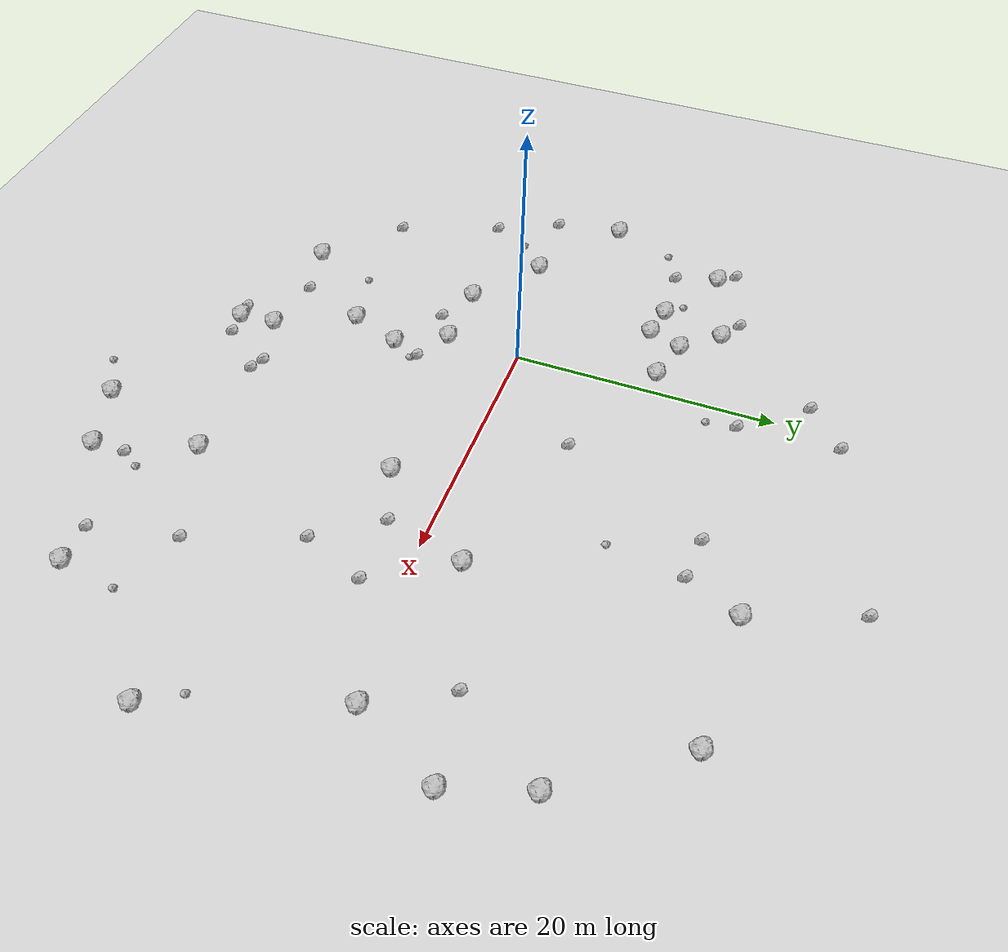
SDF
<sdf version="1.6">
 <world name="default">
  <include><uri>model://custom_ground</uri></include>
  <include><uri>model://sun</uri></include>
  <model name="rock1_0_0">
   <include><uri>model://rock1</uri><pose>14.795688683390786 -27.14831153094539 0.5 0 0 0</pose></include>
  </model>
  <model name="rock1_0_1">
   <include><uri>model://rock1</uri><pose>-1.706923984978932 10.54316519346279 0.5 0 0 0</pose></include>
  </model>
  <model name="rock1_0_2">
   <include><uri>model://rock1</uri><pose>36.20986750086257 7.562524197066146 0.5 0 0 0</pose></include>
  </model>
  <model name="rock1_0_3">
   <include><uri>model://rock1</uri><pose>-10.713392223705311 -1.8791601486154157 0.5 0 0 0</pose></include>
  </model>
  <model name="rock1_0_4">
   <include><uri>model://rock1</uri><pose>29.83726147053168 -21.61384395769337 0.5 0 0 0</pose></include>
  </model>
  <model name="rock1_0_5">
   <include><uri>model://rock1</uri><pose>19.894158736887007 -25.55735908063849 0.5 0 0 0</pose></include>
  </model>
  <model name="rock1_0_6">
   <include><uri>model://rock1</uri><pose>-6.229414679989398 8.862673283574942 0.5 0 0 0</pose></include>
  </model>
  <model name="rock1_0_7">
   <include><uri>model://rock1</uri><pose>28.392063431559578 21.204259694937107 0.5 0 0 0</pose></include>
  </model>
  <model name="rock1_0_8">
   <include><uri>model://rock1</uri><pose>-17.799776795680394 2.9973066329254223 0.5 0 0 0</pose></include>
  </model>
  <model name="rock1_0_9">
   <include><uri>model://rock1</uri><pose>-5.908799949721605 -19.581848003338365 0.5 0 0 0</pose></include>
  </model>
  <model name="rock1_0_10">
   <include><uri>model://rock1</uri><pose>0.5131681898043041 -13.494313717414727 0.5 0 0 0</pose></include>
  </model>
  <model name="rock1_0_11">
   <include><uri>model://rock1</uri><pose>-7.65340110197357 14.214385039071452 0.5 0 0 0</pose></include>
  </model>
  <model name="rock1_0_12">
   <include><uri>model://rock1</uri><pose>3.4089803754233827 -19.387710017260467 0.5 0 0 0</pose></include>
  </model>
  <model name="rock1_0_13">
   <include><uri>model://rock1</uri><pose>17.46791862944231 -18.244187734937878 0.5 0 0 0</pose></include>
  </model>
  <model name="rock1_0_14">
   <include><uri>model://rock1</uri><pose>32.79111083680419 1.2136669253837447 0.5 0 0 0</pose></include>
  </model>
  <model name="rock1_0_15">
   <include><uri>model://rock1</uri><pose>3.6267212202863632 -22.204231125626556 0.5 0 0 0</pose></include>
  </model>
  <model name="rock1_0_16">
   <include><uri>model://rock1</uri><pose>-5.364685814052528 -5.796391277258994 0.5 0 0 0</pose></include>
  </model>
  <model name="rock1_0_17">
   <include><uri>model://rock1</uri><pose>37.54391801237864 -11.596988959542134 0.5 0 0 0</pose></include>
  </model>
  <model name="rock1_0_18">
   <include><uri>model://rock1</uri><pose>-0.02281137222828633 -5.832264107584418 0.5 0 0 0</pose></include>
  </model>
  <model name="rock1_0_19">
   <include><uri>model://rock1</uri><pose>-5.224102922806127 11.451152772141818 0.5 0 0 0</pose></include>
  </model>
  <model name="rock1_0_20">
   <include><uri>model://rock1</uri><pose>-14.392712700027307 12.375875733089572 0.5 0 0 0</pose></include>
  </model>
  <model name="rock1_0_21">
   <include><uri>model://rock1</uri><pose>34.259506624269854 13.259453446502015 0.5 0 0 0</pose></include>
  </model>
  <model name="rock1_0_22">
   <include><uri>model://rock1</uri><pose>-8.866061724749766 9.345519450801802 0.5 0 0 0</pose></include>
  </model>
  <model name="rock1_0_23">
   <include><uri>model://rock1</uri><pose>20.518652755957582 3.233255584255005 0.5 0 0 0</pose></include>
  </model>
  <model name="rock1_0_24">
   <include><uri>model://rock1</uri><pose>18.207017896352333 21.315539076022574 0.5 0 0 0</pose></include>
  </model>
  <model name="rock1_0_25">
   <include><uri>model://rock1</uri><pose>2.038212884898172 -9.548987793975243 0.5 0 0 0</pose></include>
  </model>
  <model name="rock1_0_26">
   <include><uri>model://rock1</uri><pose>14.576690317029971 -4.447202481016223 0.5 0 0 0</pose></include>
  </model>
  <model name="rock2_0_0">
   <include><uri>model://rock2</uri><pose>-15.495539327728654 13.72186803700773 0.3 0 0 0</pose></include>
  </model>
  <model name="rock2_0_1">
   <include><uri>model://rock2</uri><pose>-17.07786166035204 -2.177265013467583 0.3 0 0 0</pose></include>
  </model>
  <model name="rock2_0_2">
   <include><uri>model://rock2</uri><pose>-14.713261614766246 -6.905199923018525 0.3 0 0 0</pose></include>
  </model>
  <model name="rock2_0_3">
   <include><uri>model://rock2</uri><pose>29.59546967933717 6.622737036477034 0.3 0 0 0</pose></include>
  </model>
  <model name="rock2_0_4">
   <include><uri>model://rock2</uri><pose>26.65429321618496 -21.744105184793405 0.3 0 0 0</pose></include>
  </model>
  <model name="rock2_0_5">
   <include><uri>model://rock2</uri><pose>7.4866258079092844 -18.212374485888645 0.3 0 0 0</pose></include>
  </model>
  <model name="rock2_0_6">
   <include><uri>model://rock2</uri><pose>8.604302659276083 -18.691747580249093 0.3 0 0 0</pose></include>
  </model>
  <model name="rock2_0_7">
   <include><uri>model://rock2</uri><pose>-9.563496964097551 15.309334300634305 0.3 0 0 0</pose></include>
  </model>
  <model name="rock2_0_8">
   <include><uri>model://rock2</uri><pose>15.145062004081588 29.061500034053708 0.3 0 0 0</pose></include>
  </model>
  <model name="rock2_0_9">
   <include><uri>model://rock2</uri><pose>18.801502723570543 -2.8233461534695117 0.3 0 0 0</pose></include>
  </model>
  <model name="rock2_0_10">
   <include><uri>model://rock2</uri><pose>1.5478529824665728 17.487551332967023 0.3 0 0 0</pose></include>
  </model>
  <model name="rock2_0_11">
   <include><uri>model://rock2</uri><pose>22.111100406113216 -7.2857802767124795 0.3 0 0 0</pose></include>
  </model>
  <model name="rock2_0_12">
   <include><uri>model://rock2</uri><pose>2.775841824752355 -7.326171847166343 0.3 0 0 0</pose></include>
  </model>
  <model name="rock2_0_13">
   <include><uri>model://rock2</uri><pose>-11.804403164181142 -14.675511997451284 0.3 0 0 0</pose></include>
  </model>
  <model name="rock2_0_14">
   <include><uri>model://rock2</uri><pose>19.715574235479714 -23.027488576152663 0.3 0 0 0</pose></include>
  </model>
  <model name="rock2_0_15">
   <include><uri>model://rock2</uri><pose>1.0558459031988612 24.99869160586244 0.3 0 0 0</pose></include>
  </model>
  <model name="rock2_0_16">
   <include><uri>model://rock2</uri><pose>-1.6252476968933003 -18.635608495968803 0.3 0 0 0</pose></include>
  </model>
  <model name="rock2_0_17">
   <include><uri>model://rock2</uri><pose>7.682084450049903 6.546321689420687 0.3 0 0 0</pose></include>
  </model>
  <model name="rock2_0_18">
   <include><uri>model://rock2</uri><pose>-2.2730771636869065 22.206646742545587 0.3 0 0 0</pose></include>
  </model>
  <model name="rock2_0_19">
   <include><uri>model://rock2</uri><pose>16.299728585252865 17.32045418123102 0.3 0 0 0</pose></include>
  </model>
  <model name="rock2_0_20">
   <include><uri>model://rock2</uri><pose>-13.552973471628631 9.087609601746152 0.3 0 0 0</pose></include>
  </model>
  <model name="rock2_0_21">
   <include><uri>model://rock2</uri><pose>24.041274496314948 -2.580237962663869 0.3 0 0 0</pose></include>
  </model>
  <model name="rock2_0_22">
   <include><uri>model://rock2</uri><pose>25.176981679820102 -15.330700207320437 0.3 0 0 0</pose></include>
  </model>
  <model name="rock2_0_23">
   <include><uri>model://rock2</uri><pose>-2.2752091433756263 -7.214180567994436 0.3 0 0 0</pose></include>
  </model>
  <model name="rock2_0_24">
   <include><uri>model://rock2</uri><pose>2.2608710360577007 -22.33759468981564 0.3 0 0 0</pose></include>
  </model>
  <model name="rock2_0_25">
   <include><uri>model://rock2</uri><pose>12.863975242542452 17.60222061896294 0.3 0 0 0</pose></include>
  </model>
  <model name="rock2_0_26">
   <include><uri>model://rock2</uri><pose>5.405452038079389 -22.029889060629323 0.3 0 0 0</pose></include>
  </model>
  <model name="rock3_0_0">
   <include><uri>model://rock3</uri><pose>3.0929600748753607 -7.819294703740191 0.2 0 0 0</pose></include>
  </model>
  <model name="rock3_0_1">
   <include><uri>model://rock3</uri><pose>35.72202980289187 -8.90646304234933 0.2 0 0 0</pose></include>
  </model>
  <model name="rock3_0_2">
   <include><uri>model://rock3</uri><pose>30.459421266073115 -17.299967465898607 0.2 0 0 0</pose></include>
  </model>
  <model name="rock3_0_3">
   <include><uri>model://rock3</uri><pose>-10.21954911992826 10.571860247155449 0.2 0 0 0</pose></include>
  </model>
  <model name="rock3_0_4">
   <include><uri>model://rock3</uri><pose>-16.1975670104704 7.797067646857933 0.2 0 0 0</pose></include>
  </model>
  <model name="rock3_0_5">
   <include><uri>model://rock3</uri><pose>15.470084045548099 11.642554874691001 0.2 0 0 0</pose></include>
  </model>
  <model name="rock3_0_6">
   <include><uri>model://rock3</uri><pose>-13.32084018999115 -4.050760291532786 0.2 0 0 0</pose></include>
  </model>
  <model name="rock3_0_7">
   <include><uri>model://rock3</uri><pose>20.62061421803992 -21.6032215973704 0.2 0 0 0</pose></include>
  </model>
  <model name="rock3_0_8">
   <include><uri>model://rock3</uri><pose>11.570854243627142 -29.087021737699022 0.2 0 0 0</pose></include>
  </model>
  <model name="rock3_0_9">
   <include><uri>model://rock3</uri><pose>1.7761193775469266 15.21858443852964 0.2 0 0 0</pose></include>
  </model>
  <model name="rock3_0_10">
   <include><uri>model://rock3</uri><pose>-4.318010584438653 -14.586683998507139 0.2 0 0 0</pose></include>
  </model>
 </world>
</sdf>
